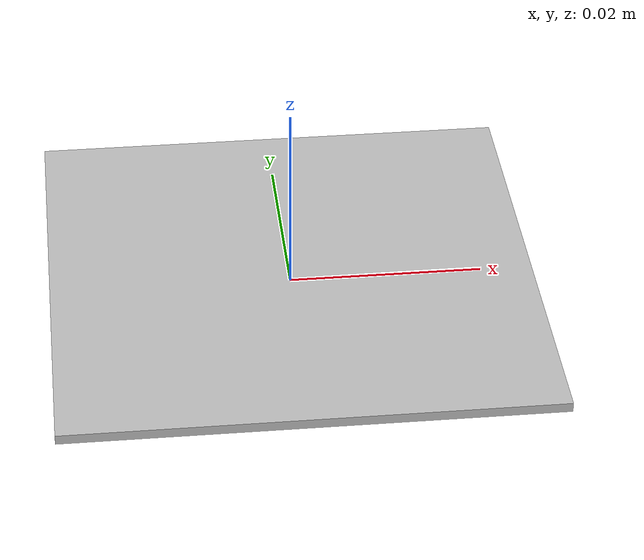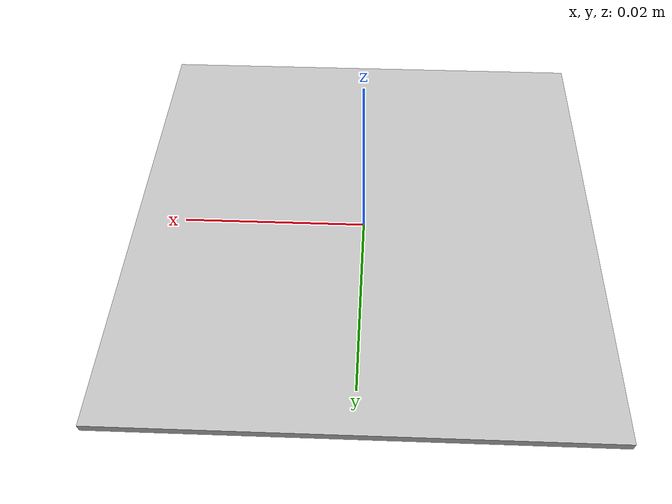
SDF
<?xml version="1.0"?>
<sdf version="1.5">
    <model name="qr_Victim_7">
        <static>true</static>
        <link name="qr_Victim_7_link">
            <pose>0 0 1e-3 0 0 1.5707963267948966</pose>
            <visual name="visual_qr_Victim_7">
                <cast_shadows>false</cast_shadows>
                <geometry><box><size>0.05 0.05 1e-3</size></box></geometry>
                <material>
                    <script>
                        <uri>model://qr_Victim_7/materials/scripts</uri>
                        <uri>model://qr_Victim_7/materials/textures</uri>
                        <name>qr_Victim_7/qr_Victim_7</name>
                    </script>
                </material>
            </visual>
        </link>
    </model>
</sdf>
